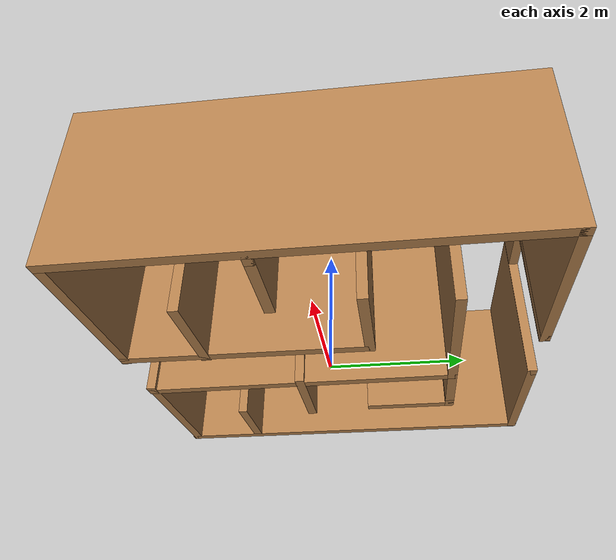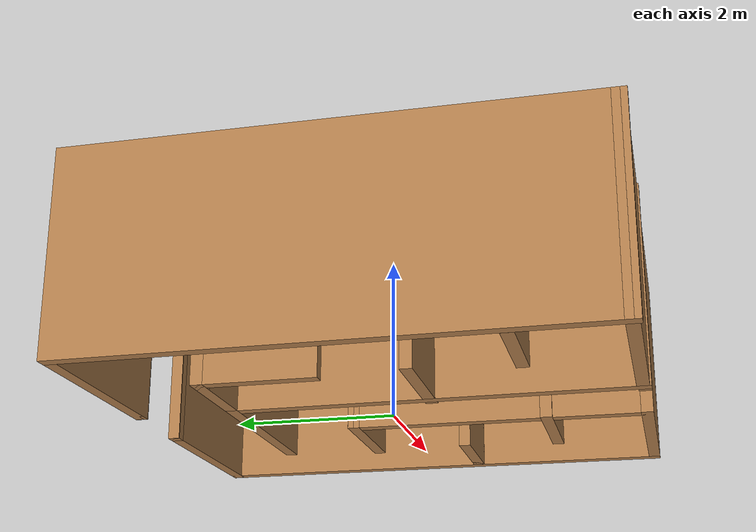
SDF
<?xml version='1.0'?>
<sdf version='1.7'>
  <model name='maze.world'>
    <pose>0.013994 0.009063 0 0 -0 0</pose>
    <link name='Wall_1'>
      <collision name='Wall_1_Collision'>
        <geometry>
          <box>
            <size>2.58045 0.15 2.5</size>
          </box>
        </geometry>
        <pose>0 0 1.25 0 -0 0</pose>
      </collision>
      <visual name='Wall_1_Visual'>
        <pose>0 0 1.25 0 -0 0</pose>
        <geometry>
          <box>
            <size>2.58045 0.15 2.5</size>
          </box>
        </geometry>
        <material>
          <script>
            <uri>file://media/materials/scripts/gazebo.material</uri>
            <name>Gazebo/Wood</name>
          </script>
          <ambient>1 1 1 1</ambient>
        </material>
        <meta>
          <layer>0</layer>
        </meta>
      </visual>
      <pose>-1.83301 3.09052 0 0 -0 3.14159</pose>
    </link>
    <link name='Wall_11'>
      <collision name='Wall_11_Collision'>
        <geometry>
          <box>
            <size>1.5 0.15 2.5</size>
          </box>
        </geometry>
        <pose>0 0 1.25 0 -0 0</pose>
      </collision>
      <visual name='Wall_11_Visual'>
        <pose>0 0 1.25 0 -0 0</pose>
        <geometry>
          <box>
            <size>1.5 0.15 2.5</size>
          </box>
        </geometry>
        <material>
          <script>
            <uri>file://media/materials/scripts/gazebo.material</uri>
            <name>Gazebo/Wood</name>
          </script>
          <ambient>1 1 1 1</ambient>
        </material>
        <meta>
          <layer>0</layer>
        </meta>
      </visual>
      <pose>-1.25016 -0.590265 0 0 -0 0</pose>
    </link>
    <link name='Wall_13'>
      <collision name='Wall_13_Collision'>
        <geometry>
          <box>
            <size>2.5 0.15 2.5</size>
          </box>
        </geometry>
        <pose>0 0 1.25 0 -0 0</pose>
      </collision>
      <visual name='Wall_13_Visual'>
        <pose>0 0 1.25 0 -0 0</pose>
        <geometry>
          <box>
            <size>2.5 0.15 2.5</size>
          </box>
        </geometry>
        <material>
          <script>
            <uri>file://media/materials/scripts/gazebo.material</uri>
            <name>Gazebo/Wood</name>
          </script>
          <ambient>1 1 1 1</ambient>
        </material>
        <meta>
          <layer>0</layer>
        </meta>
      </visual>
      <pose>0.557218 1.86063 0 0 -0 0</pose>
    </link>
    <link name='Wall_15'>
      <collision name='Wall_15_Collision'>
        <geometry>
          <box>
            <size>2.62932 0.15 2.5</size>
          </box>
        </geometry>
        <pose>0 0 1.25 0 -0 0</pose>
      </collision>
      <visual name='Wall_15_Visual'>
        <pose>0 0 1.25 0 -0 0</pose>
        <geometry>
          <box>
            <size>2.62932 0.15 2.5</size>
          </box>
        </geometry>
        <material>
          <script>
            <uri>file://media/materials/scripts/gazebo.material</uri>
            <name>Gazebo/Wood</name>
          </script>
          <ambient>1 1 1 1</ambient>
        </material>
        <meta>
          <layer>0</layer>
        </meta>
      </visual>
      <pose>1.80858 3.09052 0 0 -0 0</pose>
    </link>
    <link name='Wall_16'>
      <collision name='Wall_16_Collision'>
        <geometry>
          <box>
            <size>6.31037 0.15 2.5</size>
          </box>
        </geometry>
        <pose>0 0 1.25 0 -0 0</pose>
      </collision>
      <visual name='Wall_16_Visual'>
        <pose>0 0 1.25 0 -0 0</pose>
        <geometry>
          <box>
            <size>6.31037 0.15 2.5</size>
          </box>
        </geometry>
        <material>
          <script>
            <uri>file://media/materials/scripts/gazebo.material</uri>
            <name>Gazebo/Wood</name>
          </script>
          <ambient>1 1 1 1</ambient>
        </material>
        <meta>
          <layer>0</layer>
        </meta>
      </visual>
      <pose>3.07841 0.010348 0 0 -0 -1.56753</pose>
    </link>
    <link name='Wall_17'>
      <collision name='Wall_17_Collision'>
        <geometry>
          <box>
            <size>2.64943 0.15 2.5</size>
          </box>
        </geometry>
        <pose>0 0 1.25 0 -0 0</pose>
      </collision>
      <visual name='Wall_17_Visual'>
        <pose>0 0 1.25 0 -0 0</pose>
        <geometry>
          <box>
            <size>2.64943 0.15 2.5</size>
          </box>
        </geometry>
        <material>
          <script>
            <uri>file://media/materials/scripts/gazebo.material</uri>
            <name>Gazebo/Wood</name>
          </script>
          <ambient>1 1 1 1</ambient>
        </material>
        <meta>
          <layer>0</layer>
        </meta>
      </visual>
      <pose>1.79852 -3.06982 0 0 -0 3.14159</pose>
    </link>
    <link name='Wall_18'>
      <collision name='Wall_18_Collision'>
        <geometry>
          <box>
            <size>3.85062 0.15 2.5</size>
          </box>
        </geometry>
        <pose>0 0 1.25 0 -0 0</pose>
      </collision>
      <visual name='Wall_18_Visual'>
        <pose>0 0 1.25 0 -0 0</pose>
        <geometry>
          <box>
            <size>3.85062 0.15 2.5</size>
          </box>
        </geometry>
        <material>
          <script>
            <uri>file://media/materials/scripts/gazebo.material</uri>
            <name>Gazebo/Wood</name>
          </script>
          <ambient>1 1 1 1</ambient>
        </material>
        <meta>
          <layer>0</layer>
        </meta>
      </visual>
      <pose>0.558862 -1.21954 0 0 -0 1.57623</pose>
    </link>
    <link name='Wall_19'>
      <collision name='Wall_19_Collision'>
        <geometry>
          <box>
            <size>1.5 0.15 2.5</size>
          </box>
        </geometry>
        <pose>0 0 1.25 0 -0 0</pose>
      </collision>
      <visual name='Wall_19_Visual'>
        <pose>0 0 1.25 0 -0 0</pose>
        <geometry>
          <box>
            <size>1.5 0.15 2.5</size>
          </box>
        </geometry>
        <material>
          <script>
            <uri>file://media/materials/scripts/gazebo.material</uri>
            <name>Gazebo/Wood</name>
          </script>
          <ambient>1 1 1 1</ambient>
        </material>
        <meta>
          <layer>0</layer>
        </meta>
      </visual>
      <pose>1.22381 0.630746 0 0 -0 0</pose>
    </link>
    <link name='Wall_2'>
      <collision name='Wall_2_Collision'>
        <geometry>
          <box>
            <size>6.33127 0.15 2.5</size>
          </box>
        </geometry>
        <pose>0 0 1.25 0 -0 0</pose>
      </collision>
      <visual name='Wall_2_Visual'>
        <pose>0 0 1.25 0 -0 0</pose>
        <geometry>
          <box>
            <size>6.33127 0.15 2.5</size>
          </box>
        </geometry>
        <material>
          <script>
            <uri>file://media/materials/scripts/gazebo.material</uri>
            <name>Gazebo/Wood</name>
          </script>
          <ambient>1 1 1 1</ambient>
        </material>
        <meta>
          <layer>0</layer>
        </meta>
      </visual>
      <pose>-3.07841 0.000291 0 0 -0 -1.57405</pose>
    </link>
    <link name='Wall_21'>
      <collision name='Wall_21_Collision'>
        <geometry>
          <box>
            <size>1.5 0.15 2.5</size>
          </box>
        </geometry>
        <pose>0 0 1.25 0 -0 0</pose>
      </collision>
      <visual name='Wall_21_Visual'>
        <pose>0 0 1.25 0 -0 0</pose>
        <geometry>
          <box>
            <size>1.5 0.15 2.5</size>
          </box>
        </geometry>
        <material>
          <script>
            <uri>file://media/materials/scripts/gazebo.material</uri>
            <name>Gazebo/Wood</name>
          </script>
          <ambient>1 1 1 1</ambient>
        </material>
        <meta>
          <layer>0</layer>
        </meta>
      </visual>
      <pose>1.20369 -1.83731 0 0 -0 0</pose>
    </link>
    <link name='Wall_24'>
      <collision name='Wall_24_Collision'>
        <geometry>
          <box>
            <size>1.25 0.15 2.5</size>
          </box>
        </geometry>
        <pose>0 0 1.25 0 -0 0</pose>
      </collision>
      <visual name='Wall_24_Visual'>
        <pose>0 0 1.25 0 -0 0</pose>
        <geometry>
          <box>
            <size>1.25 0.15 2.5</size>
          </box>
        </geometry>
        <material>
          <script>
            <uri>file://media/materials/scripts/gazebo.material</uri>
            <name>Gazebo/Wood</name>
          </script>
          <ambient>1 1 1 1</ambient>
        </material>
        <meta>
          <layer>0</layer>
        </meta>
      </visual>
      <pose>2.38607 -0.590265 0 0 -0 0</pose>
    </link>
    <link name='Wall_25'>
      <collision name='Wall_25_Collision'>
        <geometry>
          <box>
            <size>0.25 0.15 2.5</size>
          </box>
        </geometry>
        <pose>0 0 1.25 0 -0 0</pose>
      </collision>
      <visual name='Wall_25_Visual'>
        <pose>0 0 1.25 0 -0 0</pose>
        <geometry>
          <box>
            <size>0.25 0.15 2.5</size>
          </box>
        </geometry>
        <material>
          <script>
            <uri>file://media/materials/scripts/gazebo.material</uri>
            <name>Gazebo/Wood</name>
          </script>
          <ambient>1 1 1 1</ambient>
        </material>
        <meta>
          <layer>0</layer>
        </meta>
      </visual>
      <pose>2.98607 -0.590265 0 0 -0 0</pose>
    </link>
    <link name='Wall_27'>
      <pose>-0.024432 3.09052 0 0 -0 0</pose>
      <visual name='Wall_27_Visual_0'>
        <pose>-0.586268 0 1.25 0 -0 0</pose>
        <geometry>
          <box>
            <size>0.164165 0.15 2.5</size>
          </box>
        </geometry>
        <material>
          <script>
            <uri>file://media/materials/scripts/gazebo.material</uri>
            <name>Gazebo/Wood</name>
          </script>
          <ambient>1 1 1 1</ambient>
        </material>
        <meta>
          <layer>0</layer>
        </meta>
      </visual>
      <collision name='Wall_27_Collision_0'>
        <geometry>
          <box>
            <size>0.164165 0.15 2.5</size>
          </box>
        </geometry>
        <pose>-0.586268 0 1.25 0 -0 0</pose>
      </collision>
      <visual name='Wall_27_Visual_1'>
        <pose>0.602043 0 1.25 0 -0 0</pose>
        <geometry>
          <box>
            <size>0.132615 0.15 2.5</size>
          </box>
        </geometry>
        <material>
          <script>
            <uri>file://media/materials/scripts/gazebo.material</uri>
            <name>Gazebo/Wood</name>
          </script>
          <ambient>1 1 1 1</ambient>
        </material>
        <meta>
          <layer>0</layer>
        </meta>
      </visual>
      <collision name='Wall_27_Collision_1'>
        <geometry>
          <box>
            <size>0.132615 0.15 2.5</size>
          </box>
        </geometry>
        <pose>0.602043 0 1.25 0 -0 0</pose>
      </collision>
      <visual name='Wall_27_Visual_2'>
        <pose>0.015775 0 2.25 0 -0 0</pose>
        <geometry>
          <box>
            <size>1.03992 0.15 0.5</size>
          </box>
        </geometry>
        <material>
          <script>
            <uri>file://media/materials/scripts/gazebo.material</uri>
            <name>Gazebo/Wood</name>
          </script>
          <ambient>1 1 1 1</ambient>
        </material>
        <meta>
          <layer>0</layer>
        </meta>
      </visual>
      <collision name='Wall_27_Collision_2'>
        <geometry>
          <box>
            <size>1.03992 0.15 0.5</size>
          </box>
        </geometry>
        <pose>0.015775 0 2.25 0 -0 0</pose>
      </collision>
    </link>
    <link name='Wall_29'>
      <pose>-0.044545 -3.07988 0 0 -0 0.016392</pose>
      <visual name='Wall_29_Visual_0'>
        <pose>-0.577705 0 1.25 0 -0 0</pose>
        <geometry>
          <box>
            <size>0.221682 0.15 2.5</size>
          </box>
        </geometry>
        <material>
          <script>
            <uri>file://media/materials/scripts/gazebo.material</uri>
            <name>Gazebo/Wood</name>
          </script>
          <ambient>1 1 1 1</ambient>
        </material>
        <meta>
          <layer>0</layer>
        </meta>
      </visual>
      <collision name='Wall_29_Collision_0'>
        <geometry>
          <box>
            <size>0.221682 0.15 2.5</size>
          </box>
        </geometry>
        <pose>-0.577705 0 1.25 0 -0 0</pose>
      </collision>
      <visual name='Wall_29_Visual_1'>
        <pose>0.613448 0 1.25 0 -0 0</pose>
        <geometry>
          <box>
            <size>0.150197 0.15 2.5</size>
          </box>
        </geometry>
        <material>
          <script>
            <uri>file://media/materials/scripts/gazebo.material</uri>
            <name>Gazebo/Wood</name>
          </script>
          <ambient>1 1 1 1</ambient>
        </material>
        <meta>
          <layer>0</layer>
        </meta>
      </visual>
      <collision name='Wall_29_Collision_1'>
        <geometry>
          <box>
            <size>0.150197 0.15 2.5</size>
          </box>
        </geometry>
        <pose>0.613448 0 1.25 0 -0 0</pose>
      </collision>
      <visual name='Wall_29_Visual_2'>
        <pose>0.035742 0 2.25 0 -0 0</pose>
        <geometry>
          <box>
            <size>1.00521 0.15 0.5</size>
          </box>
        </geometry>
        <material>
          <script>
            <uri>file://media/materials/scripts/gazebo.material</uri>
            <name>Gazebo/Wood</name>
          </script>
          <ambient>1 1 1 1</ambient>
        </material>
        <meta>
          <layer>0</layer>
        </meta>
      </visual>
      <collision name='Wall_29_Collision_2'>
        <geometry>
          <box>
            <size>1.00521 0.15 0.5</size>
          </box>
        </geometry>
        <pose>0.035742 0 2.25 0 -0 0</pose>
      </collision>
    </link>
    <link name='Wall_3'>
      <collision name='Wall_3_Collision'>
        <geometry>
          <box>
            <size>2.58045 0.15 2.5</size>
          </box>
        </geometry>
        <pose>0 0 1.25 0 -0 0</pose>
      </collision>
      <visual name='Wall_3_Visual'>
        <pose>0 0 1.25 0 -0 0</pose>
        <geometry>
          <box>
            <size>2.58045 0.15 2.5</size>
          </box>
        </geometry>
        <material>
          <script>
            <uri>file://media/materials/scripts/gazebo.material</uri>
            <name>Gazebo/Wood</name>
          </script>
          <ambient>1 1 1 1</ambient>
        </material>
        <meta>
          <layer>0</layer>
        </meta>
      </visual>
      <pose>-1.87324 -3.06982 0 0 -0 0</pose>
    </link>
    <link name='Wall_4'>
      <collision name='Wall_4_Collision'>
        <geometry>
          <box>
            <size>5.10073 0.15 2.5</size>
          </box>
        </geometry>
        <pose>0 0 1.25 0 -0 0</pose>
      </collision>
      <visual name='Wall_4_Visual'>
        <pose>0 0 1.25 0 -0 0</pose>
        <geometry>
          <box>
            <size>5.10073 0.15 2.5</size>
          </box>
        </geometry>
        <material>
          <script>
            <uri>file://media/materials/scripts/gazebo.material</uri>
            <name>Gazebo/Wood</name>
          </script>
          <ambient>1 1 1 1</ambient>
        </material>
        <meta>
          <layer>0</layer>
        </meta>
      </visual>
      <pose>-0.637896 -0.614652 0 0 -0 1.56267</pose>
    </link>
    <link name='Wall_5'>
      <collision name='Wall_5_Collision'>
        <geometry>
          <box>
            <size>1.25 0.15 2.5</size>
          </box>
        </geometry>
        <pose>0 0 1.25 0 -0 0</pose>
      </collision>
      <visual name='Wall_5_Visual'>
        <pose>0 0 1.25 0 -0 0</pose>
        <geometry>
          <box>
            <size>1.25 0.15 2.5</size>
          </box>
        </geometry>
        <material>
          <script>
            <uri>file://media/materials/scripts/gazebo.material</uri>
            <name>Gazebo/Wood</name>
          </script>
          <ambient>1 1 1 1</ambient>
        </material>
        <meta>
          <layer>0</layer>
        </meta>
      </visual>
      <pose>-1.16778 1.86063 0 0 -0 3.14159</pose>
    </link>
    <link name='Wall_6'>
      <collision name='Wall_6_Collision'>
        <geometry>
          <box>
            <size>0.25 0.15 2.5</size>
          </box>
        </geometry>
        <pose>0 0 1.25 0 -0 0</pose>
      </collision>
      <visual name='Wall_6_Visual'>
        <pose>0 0 1.25 0 -0 0</pose>
        <geometry>
          <box>
            <size>0.25 0.15 2.5</size>
          </box>
        </geometry>
        <material>
          <script>
            <uri>file://media/materials/scripts/gazebo.material</uri>
            <name>Gazebo/Wood</name>
          </script>
          <ambient>1 1 1 1</ambient>
        </material>
        <meta>
          <layer>0</layer>
        </meta>
      </visual>
      <pose>-1.76778 1.86063 0 0 -0 3.14159</pose>
    </link>
    <link name='Wall_7'>
      <collision name='Wall_7_Collision'>
        <geometry>
          <box>
            <size>1.5 0.15 2.5</size>
          </box>
        </geometry>
        <pose>0 0 1.25 0 -0 0</pose>
      </collision>
      <visual name='Wall_7_Visual'>
        <pose>0 0 1.25 0 -0 0</pose>
        <geometry>
          <box>
            <size>1.5 0.15 2.5</size>
          </box>
        </geometry>
        <material>
          <script>
            <uri>file://media/materials/scripts/gazebo.material</uri>
            <name>Gazebo/Wood</name>
          </script>
          <ambient>1 1 1 1</ambient>
        </material>
        <meta>
          <layer>0</layer>
        </meta>
      </visual>
      <pose>-1.81778 1.18563 0 0 -0 -1.5708</pose>
    </link>
    <link name='Wall_9'>
      <collision name='Wall_9_Collision'>
        <geometry>
          <box>
            <size>1.25 0.15 2.5</size>
          </box>
        </geometry>
        <pose>0 0 1.25 0 -0 0</pose>
      </collision>
      <visual name='Wall_9_Visual'>
        <pose>0 0 1.25 0 -0 0</pose>
        <geometry>
          <box>
            <size>1.25 0.15 2.5</size>
          </box>
        </geometry>
        <material>
          <script>
            <uri>file://media/materials/scripts/gazebo.material</uri>
            <name>Gazebo/Wood</name>
          </script>
          <ambient>1 1 1 1</ambient>
        </material>
        <meta>
          <layer>0</layer>
        </meta>
      </visual>
      <pose>-2.38084 -1.83731 0 0 -0 0</pose>
    </link>
    <static>1</static>
  </model>
</sdf>
